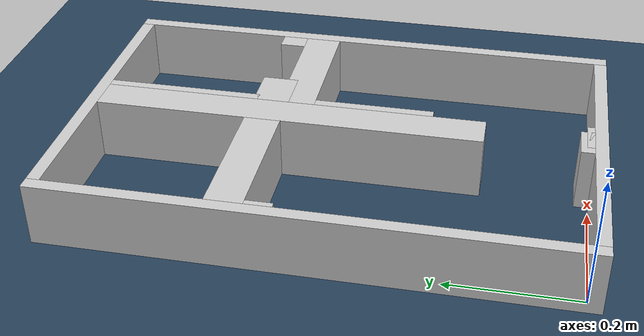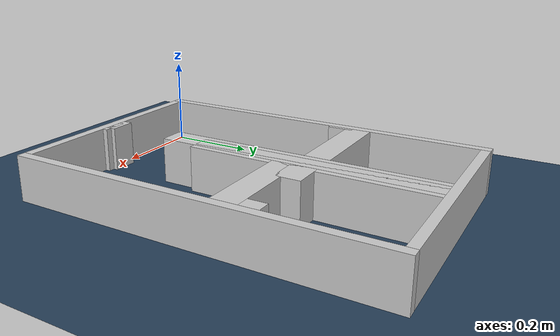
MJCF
<?xml version="1.0" ?>
<mujoco model="generated_real_template">
  <compiler angle="degree"/>
  <option timestep="0.002" integrator="implicitfast" iterations="100" cone="elliptic"/>
  <default>
    <geom density="1"/>
  </default>
  <asset>
    <texture builtin="gradient" height="3072" rgb1="0.3 0.5 0.7" rgb2="0 0 0" type="skybox" width="512"/>
    <texture builtin="checker" height="300" mark="edge" markrgb="0.8 0.8 0.8" name="groundplane" rgb1="0.2 0.3 0.4" rgb2="0.1 0.2 0.3" type="2d" width="300"/>
    <material name="groundplane" reflectance="0.2" texrepeat="5 5" texture="groundplane" texuniform="true"/>
  </asset>
  <worldbody>
    <light dir="0 0 -1" directional="true" pos="0 0 1.5"/>
    <geom name="floor" type="plane" condim="4" friction="0.5 0.005 0.001" material="groundplane" size="0 0 0.05"/>
    <body name="walls">
      <geom name="wall_boundary_left" type="box" condim="4" friction="1.0 0.005 0.0001" rgba="0.8 0.8 0.8 1" pos="-0.010000 0.387500 0.050000" euler="0 0 0.000000" size="0.010000 0.407500 0.050000"/>
      <geom name="wall_boundary_right" type="box" condim="4" friction="1.0 0.005 0.0001" rgba="0.8 0.8 0.8 1" pos="0.500000 0.387500 0.050000" euler="0 0 0.000000" size="0.010000 0.407500 0.050000"/>
      <geom name="wall_boundary_bottom" type="box" condim="4" friction="1.0 0.005 0.0001" rgba="0.8 0.8 0.8 1" pos="0.245000 -0.010000 0.050000" euler="0 0 0.000000" size="0.245000 0.010000 0.050000"/>
      <geom name="wall_boundary_top" type="box" condim="4" friction="1.0 0.005 0.0001" rgba="0.8 0.8 0.8 1" pos="0.245000 0.785000 0.050000" euler="0 0 0.000000" size="0.245000 0.010000 0.050000"/>
      <geom name="wall_inner_1_1" type="box" condim="4" friction="1.0 0.005 0.0001" rgba="0.8 0.8 0.8 1" pos="0.259820 0.005720 0.050000" euler="0 0 90.000000" size="0.005720 0.028500 0.050000"/>
      <geom name="wall_inner_1_2" type="box" condim="4" friction="1.0 0.005 0.0001" rgba="0.8 0.8 0.8 1" pos="0.259820 0.510934 0.050000" euler="0 0 90.000000" size="0.264066 0.028500 0.050000"/>
      <geom name="wall_inner_2_1" type="box" condim="4" friction="1.0 0.005 0.0001" rgba="0.8 0.8 0.8 1" pos="0.172015 0.505274 0.050000" euler="0 0 0.000000" size="0.172015 0.028500 0.050000"/>
      <geom name="wall_inner_2_2" type="box" condim="4" friction="1.0 0.005 0.0001" rgba="0.8 0.8 0.8 1" pos="0.474966 0.505274 0.050000" euler="0 0 0.000000" size="0.015034 0.028500 0.050000"/>
      <geom name="wall_inner_3_1" type="box" condim="4" friction="1.0 0.005 0.0001" rgba="0.8 0.8 0.8 1" pos="0.245373 0.010614 0.050000" euler="0 0 90.000000" size="0.010614 0.028500 0.050000"/>
      <geom name="wall_inner_3_2" type="box" condim="4" friction="1.0 0.005 0.0001" rgba="0.8 0.8 0.8 1" pos="0.245373 0.469581 0.050000" euler="0 0 90.000000" size="0.305419 0.028500 0.050000"/>
      <geom name="wall_inner_4_1" type="box" condim="4" friction="1.0 0.005 0.0001" rgba="0.8 0.8 0.8 1" pos="0.004475 0.463742 0.050000" euler="0 0 0.000000" size="0.004475 0.028500 0.050000"/>
      <geom name="wall_inner_4_2" type="box" condim="4" friction="1.0 0.005 0.0001" rgba="0.8 0.8 0.8 1" pos="0.378873 0.463742 0.050000" euler="0 0 0.000000" size="0.111127 0.028500 0.050000"/>
    </body>
  </worldbody>
</mujoco>
